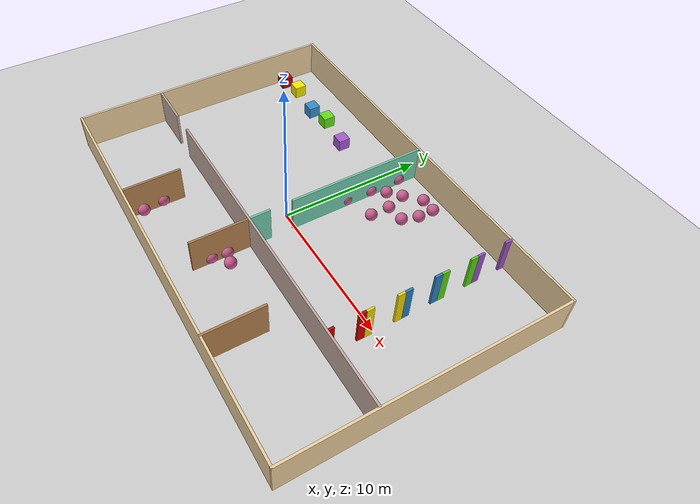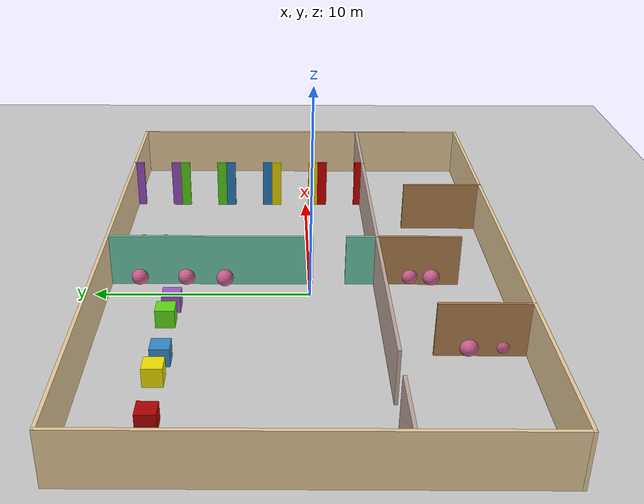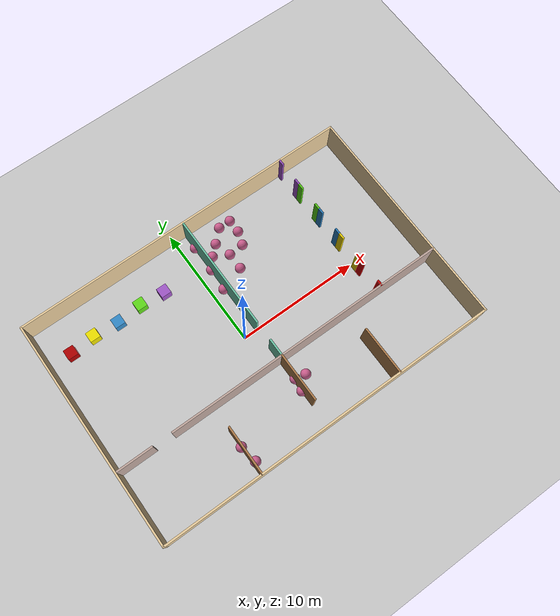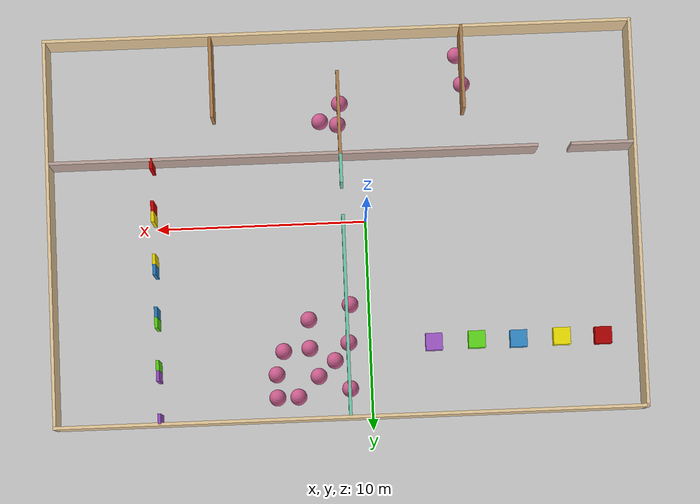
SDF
<sdf version="1.6">
 <world name="default">
  <include><uri>model://sun</uri></include>
  <include><uri>model://ground_plane</uri></include>
  <include><uri>model://world1</uri><static>true</static></include>
  <include><uri>model://box_red</uri><pose>-11 6 1.5 0 0 0</pose><static>false</static></include>
  <include><uri>model://box_yellow</uri><pose>-9 6 1.5 0 0 0</pose><static>false</static></include>
  <include><uri>model://box_blue</uri><pose>-7 6 1.5 0 0 0</pose><static>false</static></include>
  <include><uri>model://box_green</uri><pose>-5 6 1.5 0 0 0</pose><static>false</static></include>
  <include><uri>model://box_purple</uri><pose>-3 6 1.5 0 0 0</pose><static>false</static></include>
  <model name="Ball1">
   <include><uri>model://ball_pink</uri><pose>1.16 -4.72 0.4 0 0 0</pose><static>true</static></include>
  </model>
  <model name="Ball2">
   <include><uri>model://ball_pink</uri><pose>1.02 -5.73 0.4 0 0 0</pose><static>true</static></include>
  </model>
  <model name="Ball3">
   <include><uri>model://ball_pink</uri><pose>-4.89 -6.45 0.4 0 0 0</pose><static>true</static></include>
  </model>
  <model name="Ball4">
   <include><uri>model://ball_pink</uri><pose>-4.66 -7.86 0.4 0 0 0</pose><static>true</static></include>
  </model>
  <model name="Ball5">
   <include><uri>model://ball_pink</uri><pose>0.89 3.98 0.4 0 0 0</pose><static>true</static></include>
  </model>
  <model name="Ball6">
   <include><uri>model://ball_pink</uri><pose>1.02 5.8 0.4 0 0 0</pose><static>true</static></include>
  </model>
  <model name="Ball7">
   <include><uri>model://ball_pink</uri><pose>1.7 6.63 0.4 0 0 0</pose><static>true</static></include>
  </model>
  <model name="Ball8">
   <include><uri>model://ball_pink</uri><pose>2.5 7.35 0.4 0 0 0</pose><static>true</static></include>
  </model>
  <model name="Ball9">
   <include><uri>model://ball_pink</uri><pose>4.14 6.1 0.4 0 0 0</pose><static>true</static></include>
  </model>
  <model name="Ball10">
   <include><uri>model://ball_pink</uri><pose>2.89 4.63 0.4 0 0 0</pose><static>true</static></include>
  </model>
  <model name="Ball11">
   <include><uri>model://ball_pink</uri><pose>2.89 6.0 0.4 0 0 0</pose><static>true</static></include>
  </model>
  <model name="Ball12">
   <include><uri>model://ball_pink</uri><pose>1.02 8.0 0.4 0 0 0</pose><static>true</static></include>
  </model>
  <model name="Ball13">
   <include><uri>model://ball_pink</uri><pose>4.5 8.3 0.4 0 0 0</pose><static>true</static></include>
  </model>
  <model name="Ball14">
   <include><uri>model://ball_pink</uri><pose>4.5 7.2 0.4 0 0 0</pose><static>true</static></include>
  </model>
  <model name="Ball15">
   <include><uri>model://ball_pink</uri><pose>2.0 -4.9 0.4 0 0 0</pose><static>true</static></include>
  </model>
  <model name="Ball16">
   <include><uri>model://ball_pink</uri><pose>3.5 8.3 0.4 0 0 0</pose><static>true</static></include>
  </model>
 </world>
</sdf>

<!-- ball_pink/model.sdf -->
<sdf version='1.6'>
  <model name='ball_pink'>
    <link name='link_0'>
      <inertial>
        <mass>1</mass>
        <inertia>
          <ixx>0.1</ixx>
          <ixy>0</ixy>
          <ixz>0</ixz>
          <iyy>0.1</iyy>
          <iyz>0</iyz>
          <izz>0.1</izz>
        </inertia>
        <pose frame=''>0 0 0 0 -0 0</pose>
      </inertial>
      <pose frame=''>-0 -0 0 0 -0 0</pose>
      <gravity>1</gravity>
      <self_collide>0</self_collide>
      <kinematic>0</kinematic>
      <enable_wind>0</enable_wind>
      <visual name='visual'>
        <pose frame=''>0 0 0 0 -0 0</pose>
        <geometry>
          <sphere>
            <radius>0.4</radius>
          </sphere>
        </geometry>
        <material>
          <lighting>1</lighting>
          <script>
            <uri>file://media/materials/scripts/gazebo.material</uri>
            <name>Gazebo/Grey</name>
          </script>
          <shader type='pixel'>
            <normal_map>__default__</normal_map>
          </shader>
          <ambient>0.745 0.314 0.502 1</ambient>
          <diffuse>0.79 0.36 0.55 1</diffuse>
          <specular>0.01 0.01 0.01 1</specular>
          <emissive>0 0 0 1</emissive>
        </material>
        <transparency>0</transparency>
        <cast_shadows>1</cast_shadows>
      </visual>
      <collision name='collision'>
        <laser_retro>0</laser_retro>
        <max_contacts>10</max_contacts>
        <pose frame=''>0 0 0 0 -0 0</pose>
        <geometry>
          <sphere>
            <radius>0.4</radius>
          </sphere>
        </geometry>
        <surface>
          <friction>
            <ode>
              <mu>1</mu>
              <mu2>1</mu2>
              <fdir1>0 0 0</fdir1>
              <slip1>0</slip1>
              <slip2>0</slip2>
            </ode>
            <torsional>
              <coefficient>1</coefficient>
              <patch_radius>0</patch_radius>
              <surface_radius>0</surface_radius>
              <use_patch_radius>1</use_patch_radius>
              <ode>
                <slip>0</slip>
              </ode>
            </torsional>
          </friction>
          <bounce>
            <restitution_coefficient>0</restitution_coefficient>
            <threshold>1e+06</threshold>
          </bounce>
          <contact>
            <collide_without_contact>0</collide_without_contact>
            <collide_without_contact_bitmask>1</collide_without_contact_bitmask>
            <collide_bitmask>1</collide_bitmask>
            <ode>
              <soft_cfm>0</soft_cfm>
              <soft_erp>0.2</soft_erp>
              <kp>1e+13</kp>
              <kd>1</kd>
              <max_vel>0.01</max_vel>
              <min_depth>0</min_depth>
            </ode>
            <bullet>
              <split_impulse>1</split_impulse>
              <split_impulse_penetration_threshold>-0.01</split_impulse_penetration_threshold>
              <soft_cfm>0</soft_cfm>
              <soft_erp>0.2</soft_erp>
              <kp>1e+13</kp>
              <kd>1</kd>
            </bullet>
          </contact>
        </surface>
      </collision>
    </link>
    <static>0</static>
    <allow_auto_disable>1</allow_auto_disable>
  </model>
</sdf>

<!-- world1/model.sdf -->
<sdf version='1.6'>
  <model name='world1'>
    <pose frame=''>1.038 0.236278 0 0 -0 0</pose>
    <link name='Wall_0'>
      <collision name='Wall_0_Collision'>
        <geometry>
          <box>
            <size>28 0.15 2.5</size>
          </box>
        </geometry>
        <pose frame=''>0 0 1.25 0 -0 0</pose>
      </collision>
      <visual name='Wall_0_Visual'>
        <pose frame=''>0 0 1.25 0 -0 0</pose>
        <geometry>
          <box>
            <size>28 0.15 2.5</size>
          </box>
        </geometry>
        <material>
          <script>
            <uri>file://media/materials/scripts/gazebo.material</uri>
            <name>Gazebo/Grey</name>
          </script>
          <ambient>0.921569 0.807843 0.615686 1</ambient>
        </material>
        <meta>
          <layer>0</layer>
        </meta>
      </visual>
      <pose frame=''>0 -9.175 0 0 -0 0</pose>
    </link>
    <link name='Wall_10'>
      <collision name='Wall_10_Collision'>
        <geometry>
          <box>
            <size>18.5 0.15 2.5</size>
          </box>
        </geometry>
        <pose frame=''>0 0 1.25 0 -0 0</pose>
      </collision>
      <visual name='Wall_10_Visual'>
        <pose frame=''>0 0 1.25 0 -0 0</pose>
        <geometry>
          <box>
            <size>18.5 0.15 2.5</size>
          </box>
        </geometry>
        <material>
          <script>
            <uri>file://media/materials/scripts/gazebo.material</uri>
            <name>Gazebo/Grey</name>
          </script>
          <ambient>0.921569 0.807843 0.615686 1</ambient>
        </material>
        <meta>
          <layer>0</layer>
        </meta>
      </visual>
      <pose frame=''>-13.925 0 0 0 -0 1.5708</pose>
    </link>
    <link name='Wall_15'>
      <collision name='Wall_15_Collision'>
        <geometry>
          <box>
            <size>4 0.15 2.5</size>
          </box>
        </geometry>
        <pose frame=''>0 0 1.25 0 -0 0</pose>
      </collision>
      <visual name='Wall_15_Visual'>
        <pose frame=''>0 0 1.25 0 -0 0</pose>
        <geometry>
          <box>
            <size>4 0.15 2.5</size>
          </box>
        </geometry>
        <material>
          <script>
            <uri>file://media/materials/scripts/gazebo.material</uri>
            <name>Gazebo/Wood</name>
          </script>
          <ambient>1 1 1 1</ambient>
        </material>
        <meta>
          <layer>0</layer>
        </meta>
      </visual>
      <pose frame=''>6.05331 -7.24906 0 0 -0 -1.5708</pose>
    </link>
    <link name='Wall_19'>
      <collision name='Wall_19_Collision'>
        <geometry>
          <box>
            <size>4 0.15 2.5</size>
          </box>
        </geometry>
        <pose frame=''>0 0 1.25 0 -0 0</pose>
      </collision>
      <visual name='Wall_19_Visual'>
        <pose frame=''>0 0 1.25 0 -0 0</pose>
        <geometry>
          <box>
            <size>4 0.15 2.5</size>
          </box>
        </geometry>
        <material>
          <script>
            <uri>file://media/materials/scripts/gazebo.material</uri>
            <name>Gazebo/Wood</name>
          </script>
          <ambient>1 1 1 1</ambient>
        </material>
        <meta>
          <layer>0</layer>
        </meta>
      </visual>
      <pose frame=''>-5.91612 -7.23703 0 0 -0 -1.5708</pose>
    </link>
    <link name='Wall_22'>
      <collision name='Wall_22_Collision'>
        <geometry>
          <box>
            <size>4 0.15 2.5</size>
          </box>
        </geometry>
        <pose frame=''>0 0 1.25 0 -0 0</pose>
      </collision>
      <visual name='Wall_22_Visual'>
        <pose frame=''>0 0 1.25 0 -0 0</pose>
        <geometry>
          <box>
            <size>4 0.15 2.5</size>
          </box>
        </geometry>
        <material>
          <script>
            <uri>file://media/materials/scripts/gazebo.material</uri>
            <name>Gazebo/Wood</name>
          </script>
          <ambient>1 1 1 1</ambient>
        </material>
        <meta>
          <layer>0</layer>
        </meta>
      </visual>
      <pose frame=''>0.043144 -5.25298 0 0 -0 -1.5708</pose>
    </link>
    <link name='Wall_28'>
      <collision name='Wall_28_Collision'>
        <geometry>
          <box>
            <size>0.5 0.15 2.5</size>
          </box>
        </geometry>
        <pose frame=''>0 0 1.25 0 -0 0</pose>
      </collision>
      <visual name='Wall_28_Visual'>
        <pose frame=''>0 0 1.25 0 -0 0</pose>
        <geometry>
          <box>
            <size>0.5 0.15 2.5</size>
          </box>
        </geometry>
        <material>
          <script>
            <uri>file://media/materials/scripts/gazebo.material</uri>
            <name>Gazebo/Grey</name>
          </script>
          <ambient>0.8 0 0 1</ambient>
        </material>
        <meta>
          <layer>0</layer>
        </meta>
      </visual>
      <pose frame=''>9.02175 -3.14695 0 0 -0 1.5708</pose>
    </link>
    <link name='Wall_3'>
      <collision name='Wall_3_Collision'>
        <geometry>
          <box>
            <size>3 0.15 2.5</size>
          </box>
        </geometry>
        <pose frame=''>0 0 1.25 0 -0 0</pose>
      </collision>
      <visual name='Wall_3_Visual'>
        <pose frame=''>0 0 1.25 0 -0 0</pose>
        <geometry>
          <box>
            <size>3 0.15 2.5</size>
          </box>
        </geometry>
        <material>
          <script>
            <uri>file://media/materials/scripts/gazebo.material</uri>
            <name>Gazebo/Grey</name>
          </script>
          <ambient>0.760784 0.662745 0.627451 1</ambient>
        </material>
        <meta>
          <layer>0</layer>
        </meta>
      </visual>
      <pose frame=''>-12.3883 -3.32417 0 0 -0 0</pose>
    </link>
    <link name='Wall_34'>
      <collision name='Wall_34_Collision'>
        <geometry>
          <box>
            <size>0.5 0.15 2.5</size>
          </box>
        </geometry>
        <pose frame=''>0 0 1.25 0 -0 0</pose>
      </collision>
      <visual name='Wall_34_Visual'>
        <pose frame=''>0 0 1.25 0 -0 0</pose>
        <geometry>
          <box>
            <size>0.5 0.15 2.5</size>
          </box>
        </geometry>
        <material>
          <script>
            <uri>file://media/materials/scripts/gazebo.material</uri>
            <name>Gazebo/Grey</name>
          </script>
          <ambient>0.8 0 0 1</ambient>
        </material>
        <meta>
          <layer>0</layer>
        </meta>
      </visual>
      <pose frame=''>9.01979 -1.12465 0 0 -0 1.5708</pose>
    </link>
    <link name='Wall_36'>
      <collision name='Wall_36_Collision'>
        <geometry>
          <box>
            <size>0.5 0.15 2.5</size>
          </box>
        </geometry>
        <pose frame=''>0 0 1.25 0 -0 0</pose>
      </collision>
      <visual name='Wall_36_Visual'>
        <pose frame=''>0 0 1.25 0 -0 0</pose>
        <geometry>
          <box>
            <size>0.5 0.15 2.5</size>
          </box>
        </geometry>
        <material>
          <script>
            <uri>file://media/materials/scripts/gazebo.material</uri>
            <name>Gazebo/Grey</name>
          </script>
          <ambient>0.337255 0.823529 0.0784314 1</ambient>
        </material>
        <meta>
          <layer>0</layer>
        </meta>
      </visual>
      <pose frame=''>9.01168 6.41814 0 0 -0 -1.5708</pose>
    </link>
    <link name='Wall_38'>
      <collision name='Wall_38_Collision'>
        <geometry>
          <box>
            <size>0.5 0.15 2.5</size>
          </box>
        </geometry>
        <pose frame=''>0 0 1.25 0 -0 0</pose>
      </collision>
      <visual name='Wall_38_Visual'>
        <pose frame=''>0 0 1.25 0 -0 0</pose>
        <geometry>
          <box>
            <size>0.5 0.15 2.5</size>
          </box>
        </geometry>
        <material>
          <script>
            <uri>file://media/materials/scripts/gazebo.material</uri>
            <name>Gazebo/Grey</name>
          </script>
          <ambient>0.152941 0.490196 0.745098 1</ambient>
        </material>
        <meta>
          <layer>0</layer>
        </meta>
      </visual>
      <pose frame=''>9.0128 3.9049 0 0 -0 -1.5708</pose>
    </link>
    <link name='Wall_40'>
      <collision name='Wall_40_Collision'>
        <geometry>
          <box>
            <size>0.5 0.15 2.5</size>
          </box>
        </geometry>
        <pose frame=''>0 0 1.25 0 -0 0</pose>
      </collision>
      <visual name='Wall_40_Visual'>
        <pose frame=''>0 0 1.25 0 -0 0</pose>
        <geometry>
          <box>
            <size>0.5 0.15 2.5</size>
          </box>
        </geometry>
        <material>
          <script>
            <uri>file://media/materials/scripts/gazebo.material</uri>
            <name>Gazebo/Grey</name>
          </script>
          <ambient>0.152941 0.490196 0.745098 1</ambient>
        </material>
        <meta>
          <layer>0</layer>
        </meta>
      </visual>
      <pose frame=''>9.01751 1.89182 0 0 -0 -1.5708</pose>
    </link>
    <link name='Wall_42'>
      <collision name='Wall_42_Collision'>
        <geometry>
          <box>
            <size>0.5 0.15 2.5</size>
          </box>
        </geometry>
        <pose frame=''>0 0 1.25 0 -0 0</pose>
      </collision>
      <visual name='Wall_42_Visual'>
        <pose frame=''>0 0 1.25 0 -0 0</pose>
        <geometry>
          <box>
            <size>0.5 0.15 2.5</size>
          </box>
        </geometry>
        <material>
          <script>
            <uri>file://media/materials/scripts/gazebo.material</uri>
            <name>Gazebo/Grey</name>
          </script>
          <ambient>0.337255 0.823529 0.0784314 1</ambient>
        </material>
        <meta>
          <layer>0</layer>
        </meta>
      </visual>
      <pose frame=''>9.01261 4.40317 0 0 -0 -1.5708</pose>
    </link>
    <link name='Wall_44'>
      <collision name='Wall_44_Collision'>
        <geometry>
          <box>
            <size>0.5 0.15 2.5</size>
          </box>
        </geometry>
        <pose frame=''>0 0 1.25 0 -0 0</pose>
      </collision>
      <visual name='Wall_44_Visual'>
        <pose frame=''>0 0 1.25 0 -0 0</pose>
        <geometry>
          <box>
            <size>0.5 0.15 2.5</size>
          </box>
        </geometry>
        <material>
          <script>
            <uri>file://media/materials/scripts/gazebo.material</uri>
            <name>Gazebo/Grey</name>
          </script>
          <ambient>0.929412 0.831373 0 1</ambient>
        </material>
        <meta>
          <layer>0</layer>
        </meta>
      </visual>
      <pose frame=''>9.0178 1.39306 0 0 -0 -1.5708</pose>
    </link>
    <link name='Wall_46'>
      <collision name='Wall_46_Collision'>
        <geometry>
          <box>
            <size>0.5 0.15 2.5</size>
          </box>
        </geometry>
        <pose frame=''>0 0 1.25 0 -0 0</pose>
      </collision>
      <visual name='Wall_46_Visual'>
        <pose frame=''>0 0 1.25 0 -0 0</pose>
        <geometry>
          <box>
            <size>0.5 0.15 2.5</size>
          </box>
        </geometry>
        <material>
          <script>
            <uri>file://media/materials/scripts/gazebo.material</uri>
            <name>Gazebo/Grey</name>
          </script>
          <ambient>0.929412 0.831373 0 1</ambient>
        </material>
        <meta>
          <layer>0</layer>
        </meta>
      </visual>
      <pose frame=''>9.01956 -0.626449 0 0 -0 -1.5708</pose>
    </link>
    <link name='Wall_56'>
      <collision name='Wall_56_Collision'>
        <geometry>
          <box>
            <size>0.5 0.15 2.5</size>
          </box>
        </geometry>
        <pose frame=''>0 0 1.25 0 -0 0</pose>
      </collision>
      <visual name='Wall_56_Visual'>
        <pose frame=''>0 0 1.25 0 -0 0</pose>
        <geometry>
          <box>
            <size>0.5 0.15 2.5</size>
          </box>
        </geometry>
        <material>
          <script>
            <uri>file://media/materials/scripts/gazebo.material</uri>
            <name>Gazebo/Grey</name>
          </script>
          <ambient>0.596078 0.305882 0.756863 1</ambient>
        </material>
        <meta>
          <layer>0</layer>
        </meta>
      </visual>
      <pose frame=''>9.00835 8.93069 0 0 -0 -1.5708</pose>
    </link>
    <link name='Wall_58'>
      <collision name='Wall_58_Collision'>
        <geometry>
          <box>
            <size>0.5 0.15 2.5</size>
          </box>
        </geometry>
        <pose frame=''>0 0 1.25 0 -0 0</pose>
      </collision>
      <visual name='Wall_58_Visual'>
        <pose frame=''>0 0 1.25 0 -0 0</pose>
        <geometry>
          <box>
            <size>0.5 0.15 2.5</size>
          </box>
        </geometry>
        <material>
          <script>
            <uri>file://media/materials/scripts/gazebo.material</uri>
            <name>Gazebo/Grey</name>
          </script>
          <ambient>0.596078 0.305882 0.756863 1</ambient>
        </material>
        <meta>
          <layer>0</layer>
        </meta>
      </visual>
      <pose frame=''>9.01149 6.91537 0 0 -0 -1.5708</pose>
    </link>
    <link name='Wall_6'>
      <collision name='Wall_6_Collision'>
        <geometry>
          <box>
            <size>23.25 0.15 2.5</size>
          </box>
        </geometry>
        <pose frame=''>0 0 1.25 0 -0 0</pose>
      </collision>
      <visual name='Wall_6_Visual'>
        <pose frame=''>0 0 1.25 0 -0 0</pose>
        <geometry>
          <box>
            <size>23.25 0.15 2.5</size>
          </box>
        </geometry>
        <material>
          <script>
            <uri>file://media/materials/scripts/gazebo.material</uri>
            <name>Gazebo/Grey</name>
          </script>
          <ambient>0.760784 0.662745 0.627451 1</ambient>
        </material>
        <meta>
          <layer>0</layer>
        </meta>
      </visual>
      <pose frame=''>2.2875 -3.32364 0 0 -0 3.14159</pose>
    </link>
    <link name='Wall_60'>
      <collision name='Wall_60_Collision'>
        <geometry>
          <box>
            <size>28 0.15 2.5</size>
          </box>
        </geometry>
        <pose frame=''>0 0 1.25 0 -0 0</pose>
      </collision>
      <visual name='Wall_60_Visual'>
        <pose frame=''>0 0 1.25 0 -0 0</pose>
        <geometry>
          <box>
            <size>28 0.15 2.5</size>
          </box>
        </geometry>
        <material>
          <script>
            <uri>file://media/materials/scripts/gazebo.material</uri>
            <name>Gazebo/Grey</name>
          </script>
          <ambient>0.921569 0.807843 0.615686 1</ambient>
        </material>
        <meta>
          <layer>0</layer>
        </meta>
      </visual>
      <pose frame=''>0 9.175 0 0 -0 0</pose>
    </link>
    <link name='Wall_62'>
      <collision name='Wall_62_Collision'>
        <geometry>
          <box>
            <size>1.5 0.15 2.5</size>
          </box>
        </geometry>
        <pose frame=''>0 0 1.25 0 -0 0</pose>
      </collision>
      <visual name='Wall_62_Visual'>
        <pose frame=''>0 0 1.25 0 -0 0</pose>
        <geometry>
          <box>
            <size>1.5 0.15 2.5</size>
          </box>
        </geometry>
        <material>
          <script>
            <uri>file://media/materials/scripts/gazebo.material</uri>
            <name>Gazebo/Grey</name>
          </script>
          <ambient>0.435294 0.796078 0.67451 1</ambient>
        </material>
        <meta>
          <layer>0</layer>
        </meta>
      </visual>
      <pose frame=''>0.035098 -2.65298 0 0 -0 1.5708</pose>
    </link>
    <link name='Wall_74'>
      <collision name='Wall_74_Collision'>
        <geometry>
          <box>
            <size>9.5 0.15 2.5</size>
          </box>
        </geometry>
        <pose frame=''>0 0 1.25 0 -0 0</pose>
      </collision>
      <visual name='Wall_74_Visual'>
        <pose frame=''>0 0 1.25 0 -0 0</pose>
        <geometry>
          <box>
            <size>9.5 0.15 2.5</size>
          </box>
        </geometry>
        <material>
          <script>
            <uri>file://media/materials/scripts/gazebo.material</uri>
            <name>Gazebo/Grey</name>
          </script>
          <ambient>0.435294 0.796078 0.67451 1</ambient>
        </material>
        <meta>
          <layer>0</layer>
        </meta>
      </visual>
      <pose frame=''>0.030449 4.37829 0 0 -0 -1.5708</pose>
    </link>
    <link name='Wall_8'>
      <collision name='Wall_8_Collision'>
        <geometry>
          <box>
            <size>18.5 0.15 2.5</size>
          </box>
        </geometry>
        <pose frame=''>0 0 1.25 0 -0 0</pose>
      </collision>
      <visual name='Wall_8_Visual'>
        <pose frame=''>0 0 1.25 0 -0 0</pose>
        <geometry>
          <box>
            <size>18.5 0.15 2.5</size>
          </box>
        </geometry>
        <material>
          <script>
            <uri>file://media/materials/scripts/gazebo.material</uri>
            <name>Gazebo/Grey</name>
          </script>
          <ambient>0.921569 0.807843 0.615686 1</ambient>
        </material>
        <meta>
          <layer>0</layer>
        </meta>
      </visual>
      <pose frame=''>13.925 0 0 0 -0 1.5708</pose>
    </link>
    <static>1</static>
  </model>
</sdf>

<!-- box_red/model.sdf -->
<sdf version='1.6'>
  <model name='box_red'>
    <link name='link_1'>
      <inertial>
        <mass>1</mass>
        <inertia>
          <ixx>0.166667</ixx>
          <ixy>0</ixy>
          <ixz>0</ixz>
          <iyy>0.166667</iyy>
          <iyz>0</iyz>
          <izz>0.166667</izz>
        </inertia>
        <pose frame=''>0 0 0 0 -0 0</pose>
      </inertial>
      <pose frame=''>0 0 0 0 -0 0</pose>
      <gravity>1</gravity>
      <self_collide>0</self_collide>
      <kinematic>0</kinematic>
      <enable_wind>0</enable_wind>
      <visual name='visual'>
        <pose frame=''>0 0 0 0 -0 0</pose>
        <geometry>
          <box>
            <size>0.8 0.8 0.8</size>
          </box>
        </geometry>
        <material>
          <lighting>1</lighting>
          <script>
            <uri>file://media/materials/scripts/gazebo.material</uri>
            <name>Gazebo/Grey</name>
          </script>
          <shader type='pixel'>
            <normal_map>__default__</normal_map>
          </shader>
          <ambient>0.8 0 0 1</ambient>
          <diffuse>0.7 0 0 1</diffuse>
          <specular>0.01 0.01 0.01 1</specular>
          <emissive>0 0 0 1</emissive>
        </material>
        <transparency>0</transparency>
        <cast_shadows>1</cast_shadows>
      </visual>
      <collision name='collision'>
        <laser_retro>0</laser_retro>
        <max_contacts>10</max_contacts>
        <pose frame=''>0 0 0 0 -0 0</pose>
        <geometry>
          <box>
            <size>0.8 0.8 0.8</size>
          </box>
        </geometry>
        <surface>
          <friction>
            <ode>
              <mu>1</mu>
              <mu2>1</mu2>
              <fdir1>0 0 0</fdir1>
              <slip1>0</slip1>
              <slip2>0</slip2>
            </ode>
            <torsional>
              <coefficient>1</coefficient>
              <patch_radius>0</patch_radius>
              <surface_radius>0</surface_radius>
              <use_patch_radius>1</use_patch_radius>
              <ode>
                <slip>0</slip>
              </ode>
            </torsional>
          </friction>
          <bounce>
            <restitution_coefficient>0</restitution_coefficient>
            <threshold>1e+06</threshold>
          </bounce>
          <contact>
            <collide_without_contact>0</collide_without_contact>
            <collide_without_contact_bitmask>1</collide_without_contact_bitmask>
            <collide_bitmask>1</collide_bitmask>
            <ode>
              <soft_cfm>0</soft_cfm>
              <soft_erp>0.2</soft_erp>
              <kp>1e+13</kp>
              <kd>1</kd>
              <max_vel>0.01</max_vel>
              <min_depth>0</min_depth>
            </ode>
            <bullet>
              <split_impulse>1</split_impulse>
              <split_impulse_penetration_threshold>-0.01</split_impulse_penetration_threshold>
              <soft_cfm>0</soft_cfm>
              <soft_erp>0.2</soft_erp>
              <kp>1e+13</kp>
              <kd>1</kd>
            </bullet>
          </contact>
        </surface>
      </collision>
    </link>
    <static>0</static>
    <allow_auto_disable>1</allow_auto_disable>
  </model>
</sdf>

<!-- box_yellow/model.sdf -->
<sdf version='1.6'>
  <model name='box_yellow'>
    <link name='link_1'>
      <inertial>
        <mass>1</mass>
        <inertia>
          <ixx>0.166667</ixx>
          <ixy>0</ixy>
          <ixz>0</ixz>
          <iyy>0.166667</iyy>
          <iyz>0</iyz>
          <izz>0.166667</izz>
        </inertia>
        <pose frame=''>0 0 0 0 -0 0</pose>
      </inertial>
      <pose frame=''>-0.001296 -0.001085 0.5 0 -0 0</pose>
      <gravity>1</gravity>
      <self_collide>0</self_collide>
      <kinematic>0</kinematic>
      <enable_wind>0</enable_wind>
      <visual name='visual'>
        <pose frame=''>0 0 0 0 -0 0</pose>
        <geometry>
          <box>
            <size>0.8 0.8 0.8</size>
          </box>
        </geometry>
        <material>
          <lighting>1</lighting>
          <script>
            <uri>file://media/materials/scripts/gazebo.material</uri>
            <name>Gazebo/Grey</name>
          </script>
          <shader type='pixel'>
            <normal_map>__default__</normal_map>
          </shader>
          <ambient>0.929 0.831 0 1</ambient>
          <diffuse>0.95 0.9 0 1</diffuse>
          <specular>0.01 0.01 0.01 1</specular>
          <emissive>0 0 0 1</emissive>
        </material>
        <transparency>0</transparency>
        <cast_shadows>1</cast_shadows>
      </visual>
      <collision name='collision'>
        <laser_retro>0</laser_retro>
        <max_contacts>10</max_contacts>
        <pose frame=''>0 0 0 0 -0 0</pose>
        <geometry>
          <box>
            <size>0.8 0.8 0.8</size>
          </box>
        </geometry>
        <surface>
          <friction>
            <ode>
              <mu>1</mu>
              <mu2>1</mu2>
              <fdir1>0 0 0</fdir1>
              <slip1>0</slip1>
              <slip2>0</slip2>
            </ode>
            <torsional>
              <coefficient>1</coefficient>
              <patch_radius>0</patch_radius>
              <surface_radius>0</surface_radius>
              <use_patch_radius>1</use_patch_radius>
              <ode>
                <slip>0</slip>
              </ode>
            </torsional>
          </friction>
          <bounce>
            <restitution_coefficient>0</restitution_coefficient>
            <threshold>1e+06</threshold>
          </bounce>
          <contact>
            <collide_without_contact>0</collide_without_contact>
            <collide_without_contact_bitmask>1</collide_without_contact_bitmask>
            <collide_bitmask>1</collide_bitmask>
            <ode>
              <soft_cfm>0</soft_cfm>
              <soft_erp>0.2</soft_erp>
              <kp>1e+13</kp>
              <kd>1</kd>
              <max_vel>0.01</max_vel>
              <min_depth>0</min_depth>
            </ode>
            <bullet>
              <split_impulse>1</split_impulse>
              <split_impulse_penetration_threshold>-0.01</split_impulse_penetration_threshold>
              <soft_cfm>0</soft_cfm>
              <soft_erp>0.2</soft_erp>
              <kp>1e+13</kp>
              <kd>1</kd>
            </bullet>
          </contact>
        </surface>
      </collision>
    </link>
    <static>0</static>
    <allow_auto_disable>1</allow_auto_disable>
  </model>
</sdf>

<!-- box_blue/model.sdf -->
<sdf version='1.6'>
  <model name='box_blue'>
    <link name='link_1'>
      <inertial>
        <mass>1</mass>
        <inertia>
          <ixx>0.166667</ixx>
          <ixy>0</ixy>
          <ixz>0</ixz>
          <iyy>0.166667</iyy>
          <iyz>0</iyz>
          <izz>0.166667</izz>
        </inertia>
        <pose frame=''>0 0 0 0 -0 0</pose>
      </inertial>
      <pose frame=''>0 0 0 0 -0 0</pose>
      <gravity>1</gravity>
      <self_collide>0</self_collide>
      <kinematic>0</kinematic>
      <enable_wind>0</enable_wind>
      <visual name='visual'>
        <pose frame=''>0 0 0 0 -0 0</pose>
        <geometry>
          <box>
            <size>0.8 0.8 0.8</size>
          </box>
        </geometry>
        <material>
          <lighting>1</lighting>
          <script>
            <uri>file://media/materials/scripts/gazebo.material</uri>
            <name>Gazebo/Grey</name>
          </script>
          <shader type='pixel'>
            <normal_map>__default__</normal_map>
          </shader>
          <ambient>0.153 0.49 0.745 1</ambient>
          <diffuse>0.2 0.55 0.8 1</diffuse>
          <specular>0.01 0.01 0.01 1</specular>
          <emissive>0 0 0 1</emissive>
        </material>
        <transparency>0</transparency>
        <cast_shadows>1</cast_shadows>
      </visual>
      <collision name='collision'>
        <laser_retro>0</laser_retro>
        <max_contacts>10</max_contacts>
        <pose frame=''>0 0 0 0 -0 0</pose>
        <geometry>
          <box>
            <size>0.8 0.8 0.8</size>
          </box>
        </geometry>
        <surface>
          <friction>
            <ode>
              <mu>1</mu>
              <mu2>1</mu2>
              <fdir1>0 0 0</fdir1>
              <slip1>0</slip1>
              <slip2>0</slip2>
            </ode>
            <torsional>
              <coefficient>1</coefficient>
              <patch_radius>0</patch_radius>
              <surface_radius>0</surface_radius>
              <use_patch_radius>1</use_patch_radius>
              <ode>
                <slip>0</slip>
              </ode>
            </torsional>
          </friction>
          <bounce>
            <restitution_coefficient>0</restitution_coefficient>
            <threshold>1e+06</threshold>
          </bounce>
          <contact>
            <collide_without_contact>0</collide_without_contact>
            <collide_without_contact_bitmask>1</collide_without_contact_bitmask>
            <collide_bitmask>1</collide_bitmask>
            <ode>
              <soft_cfm>0</soft_cfm>
              <soft_erp>0.2</soft_erp>
              <kp>1e+13</kp>
              <kd>1</kd>
              <max_vel>0.01</max_vel>
              <min_depth>0</min_depth>
            </ode>
            <bullet>
              <split_impulse>1</split_impulse>
              <split_impulse_penetration_threshold>-0.01</split_impulse_penetration_threshold>
              <soft_cfm>0</soft_cfm>
              <soft_erp>0.2</soft_erp>
              <kp>1e+13</kp>
              <kd>1</kd>
            </bullet>
          </contact>
        </surface>
      </collision>
    </link>
    <static>0</static>
    <allow_auto_disable>1</allow_auto_disable>
  </model>
</sdf>

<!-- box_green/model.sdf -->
<sdf version='1.6'>
  <model name='box_green'>
    <link name='link_1'>
      <inertial>
        <mass>1</mass>
        <inertia>
          <ixx>0.166667</ixx>
          <ixy>0</ixy>
          <ixz>0</ixz>
          <iyy>0.166667</iyy>
          <iyz>0</iyz>
          <izz>0.166667</izz>
        </inertia>
        <pose frame=''>0 0 0 0 -0 0</pose>
      </inertial>
      <pose frame=''>-0.001296 -0.001085 0.5 0 -0 0</pose>
      <gravity>1</gravity>
      <self_collide>0</self_collide>
      <kinematic>0</kinematic>
      <enable_wind>0</enable_wind>
      <visual name='visual'>
        <pose frame=''>0 0 0 0 -0 0</pose>
        <geometry>
          <box>
            <size>0.8 0.8 0.8</size>
          </box>
        </geometry>
        <material>
          <lighting>1</lighting>
          <script>
            <uri>file://media/materials/scripts/gazebo.material</uri>
            <name>Gazebo/Grey</name>
          </script>
          <shader type='pixel'>
            <normal_map>__default__</normal_map>
          </shader>
          <ambient>0.337 0.824 0.078 1</ambient>
          <diffuse>0.38 0.87 0.1 1</diffuse>
          <specular>0.01 0.01 0.01 1</specular>
          <emissive>0 0 0 1</emissive>
        </material>
        <transparency>0</transparency>
        <cast_shadows>1</cast_shadows>
      </visual>
      <collision name='collision'>
        <laser_retro>0</laser_retro>
        <max_contacts>10</max_contacts>
        <pose frame=''>0 0 0 0 -0 0</pose>
        <geometry>
          <box>
            <size>0.8 0.8 0.8</size>
          </box>
        </geometry>
        <surface>
          <friction>
            <ode>
              <mu>1</mu>
              <mu2>1</mu2>
              <fdir1>0 0 0</fdir1>
              <slip1>0</slip1>
              <slip2>0</slip2>
            </ode>
            <torsional>
              <coefficient>1</coefficient>
              <patch_radius>0</patch_radius>
              <surface_radius>0</surface_radius>
              <use_patch_radius>1</use_patch_radius>
              <ode>
                <slip>0</slip>
              </ode>
            </torsional>
          </friction>
          <bounce>
            <restitution_coefficient>0</restitution_coefficient>
            <threshold>1e+06</threshold>
          </bounce>
          <contact>
            <collide_without_contact>0</collide_without_contact>
            <collide_without_contact_bitmask>1</collide_without_contact_bitmask>
            <collide_bitmask>1</collide_bitmask>
            <ode>
              <soft_cfm>0</soft_cfm>
              <soft_erp>0.2</soft_erp>
              <kp>1e+13</kp>
              <kd>1</kd>
              <max_vel>0.01</max_vel>
              <min_depth>0</min_depth>
            </ode>
            <bullet>
              <split_impulse>1</split_impulse>
              <split_impulse_penetration_threshold>-0.01</split_impulse_penetration_threshold>
              <soft_cfm>0</soft_cfm>
              <soft_erp>0.2</soft_erp>
              <kp>1e+13</kp>
              <kd>1</kd>
            </bullet>
          </contact>
        </surface>
      </collision>
    </link>
    <static>0</static>
    <allow_auto_disable>1</allow_auto_disable>
  </model>
</sdf>

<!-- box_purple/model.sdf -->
<sdf version='1.6'>
  <model name='box_purple'>
    <link name='link_1'>
      <inertial>
        <mass>1</mass>
        <inertia>
          <ixx>0.166667</ixx>
          <ixy>0</ixy>
          <ixz>0</ixz>
          <iyy>0.166667</iyy>
          <iyz>0</iyz>
          <izz>0.166667</izz>
        </inertia>
        <pose frame=''>0 0 0 0 -0 0</pose>
      </inertial>
      <pose frame=''>0 0 0 0 -0 0</pose>
      <gravity>1</gravity>
      <self_collide>0</self_collide>
      <kinematic>0</kinematic>
      <enable_wind>0</enable_wind>
      <visual name='visual'>
        <pose frame=''>0 0 0 0 -0 0</pose>
        <geometry>
          <box>
            <size>0.8 0.8 0.8</size>
          </box>
        </geometry>
        <material>
          <lighting>1</lighting>
          <script>
            <uri>file://media/materials/scripts/gazebo.material</uri>
            <name>Gazebo/Grey</name>
          </script>
          <shader type='pixel'>
            <normal_map>__default__</normal_map>
          </shader>
          <ambient>0.596 0.306 0.757 1</ambient>
          <diffuse>0.64 0.35 0.8 1</diffuse>
          <specular>0.01 0.01 0.01 1</specular>
          <emissive>0 0 0 1</emissive>
        </material>
        <transparency>0</transparency>
        <cast_shadows>1</cast_shadows>
      </visual>
      <collision name='collision'>
        <laser_retro>0</laser_retro>
        <max_contacts>10</max_contacts>
        <pose frame=''>0 0 0 0 -0 0</pose>
        <geometry>
          <box>
            <size>0.8 0.8 0.8</size>
          </box>
        </geometry>
        <surface>
          <friction>
            <ode>
              <mu>1</mu>
              <mu2>1</mu2>
              <fdir1>0 0 0</fdir1>
              <slip1>0</slip1>
              <slip2>0</slip2>
            </ode>
            <torsional>
              <coefficient>1</coefficient>
              <patch_radius>0</patch_radius>
              <surface_radius>0</surface_radius>
              <use_patch_radius>1</use_patch_radius>
              <ode>
                <slip>0</slip>
              </ode>
            </torsional>
          </friction>
          <bounce>
            <restitution_coefficient>0</restitution_coefficient>
            <threshold>1e+06</threshold>
          </bounce>
          <contact>
            <collide_without_contact>0</collide_without_contact>
            <collide_without_contact_bitmask>1</collide_without_contact_bitmask>
            <collide_bitmask>1</collide_bitmask>
            <ode>
              <soft_cfm>0</soft_cfm>
              <soft_erp>0.2</soft_erp>
              <kp>1e+13</kp>
              <kd>1</kd>
              <max_vel>0.01</max_vel>
              <min_depth>0</min_depth>
            </ode>
            <bullet>
              <split_impulse>1</split_impulse>
              <split_impulse_penetration_threshold>-0.01</split_impulse_penetration_threshold>
              <soft_cfm>0</soft_cfm>
              <soft_erp>0.2</soft_erp>
              <kp>1e+13</kp>
              <kd>1</kd>
            </bullet>
          </contact>
        </surface>
      </collision>
    </link>
    <static>0</static>
    <allow_auto_disable>1</allow_auto_disable>
  </model>
</sdf>
